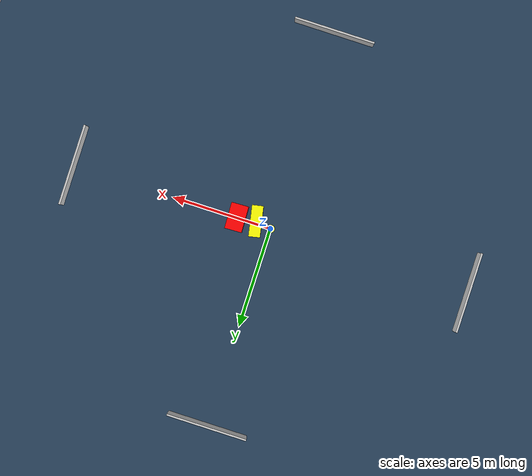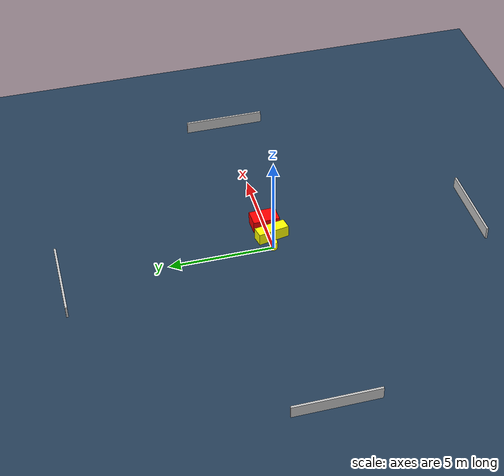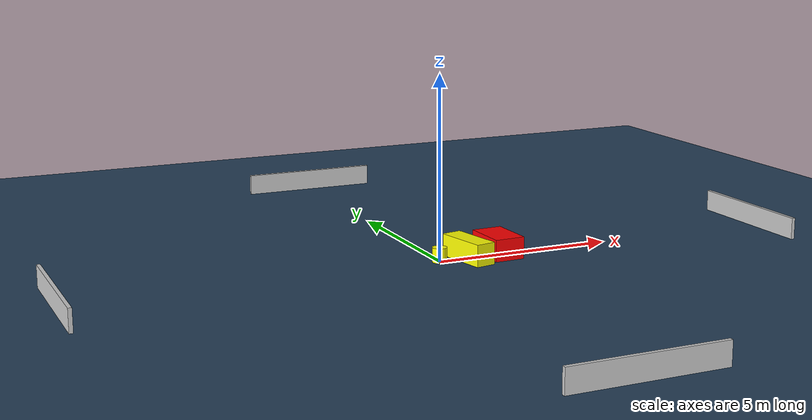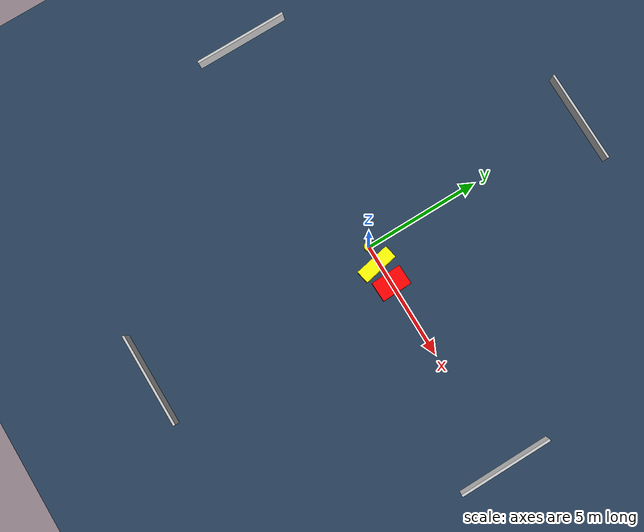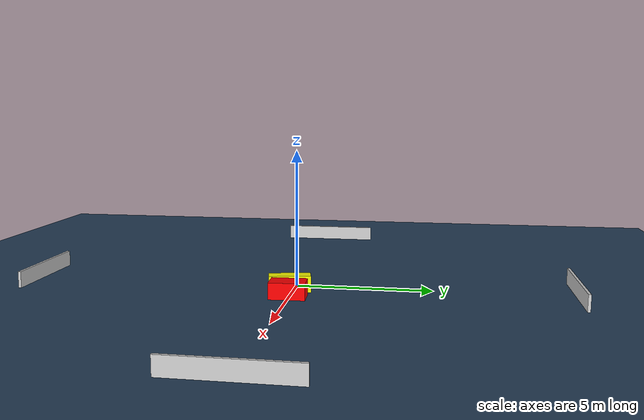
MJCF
<?xml version="1.0" ?>
<mujoco model="generated_environment">
  <option timestep="0.01" integrator="RK4" cone="elliptic"/>
  <default>
    <geom density="1"/>
  </default>
  <asset>
    <texture builtin="gradient" height="3072" name="skybox" rgb1="0.3 0.5 0.7" rgb2="0 0 0" type="skybox" width="512"/>
    <texture builtin="checker" height="300" name="groundplane" rgb1="0.2 0.3 0.4" rgb2="0.1 0.2 0.3" type="2d" width="300"/>
    <material name="groundplane" reflectance="0.2" texrepeat="5 5" texture="groundplane"/>
  </asset>
  <worldbody>
    <light dir="0 0 -1" directional="true" pos="0 0 1.5"/>
    <geom condim="3" friction="0.5 0.005 0.001" material="groundplane" name="floor" pos="0 0 0" size="0 0 0.05" type="plane"/>
    <body name="walls">
      <geom name="wall_1" condim="4" pos="-10.0 0.0 0.3" rgba="0.800000011920929 0.800000011920929 0.800000011920929 1.0" size="0.05 2.0 0.3" type="box"/>
      <geom name="wall_2" condim="4" pos="10.0 0.0 0.3" rgba="0.800000011920929 0.800000011920929 0.800000011920929 1.0" size="0.05 2.0 0.3" type="box"/>
      <geom name="wall_3" condim="4" pos="0.0 -10.0 0.3" rgba="0.800000011920929 0.800000011920929 0.800000011920929 1.0" size="2.0 0.05 0.3" type="box"/>
      <geom name="wall_4" condim="4" pos="0.0 10.0 0.3" rgba="0.800000011920929 0.800000011920929 0.800000011920929 1.0" size="2.0 0.05 0.3" type="box"/>
    </body>
    <body name="robot">
      <joint name="joint_x" type="slide" pos="0 0 0" axis="1 0 0"/>
      <joint name="joint_y" type="slide" pos="0 0 0" axis="0 1 0"/>
      <geom name="robot" type="cylinder" pos="0.0 0.0 0.2" size="0.2 0.2 0.0" mass="5.0" friction="1.0 0.005 0.0001" condim="4" rgba="1.0 1.0 0.0 1.0"/>
    </body>
    <body name="obstacle_1_movable">
      <geom name="obstacle_1_movable" condim="4" pos="0.7802861296356308 -0.13182710361382133 0.3" euler="0 0 191.0741744577048" friction="0.0 0.005 0.001" rgba="1.0 1.0 0.0 1.0" size="0.2790863462553548 0.7628488172161096 0.3" type="box" mass="0.1"/>
      <joint type="free"/>
    </body>
    <body name="obstacle_2_static">
      <geom name="obstacle_2_static" condim="4" pos="1.722835802449456 -0.02163562655065757 0.3" euler="0 0 2.0918486992648155" friction="0.0 0.005 0.001" rgba="1.0 0.0 0.0 1.0" size="0.42292248842266855 0.6472046932231659 0.3" type="box"/>
    </body>
  </worldbody>
  <actuator>
    <motor name="actuator_x" joint="joint_x" gear="1" ctrlrange="-1 1"/>
    <motor name="actuator_y" joint="joint_y" gear="1" ctrlrange="-1 1"/>
  </actuator>
</mujoco>
